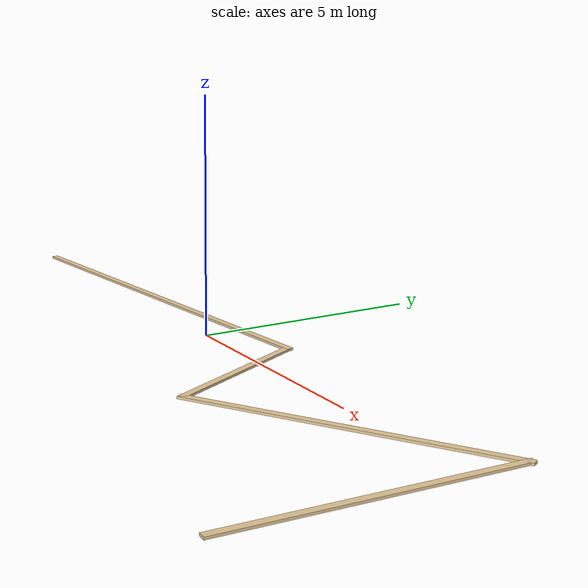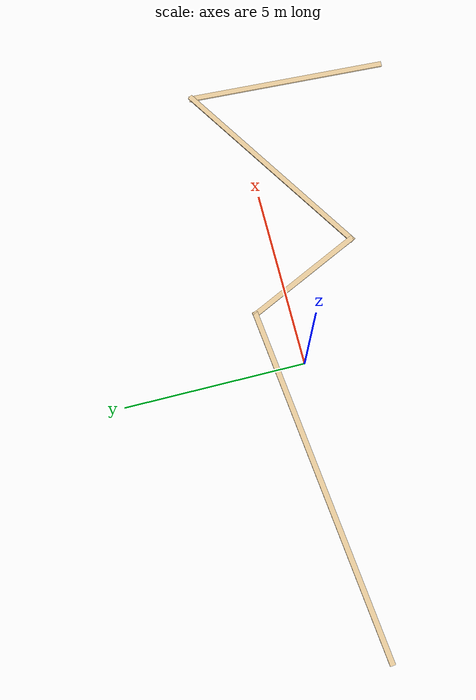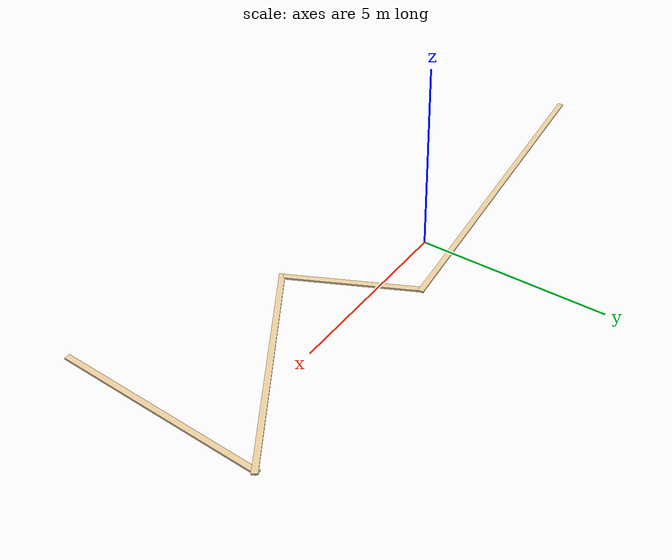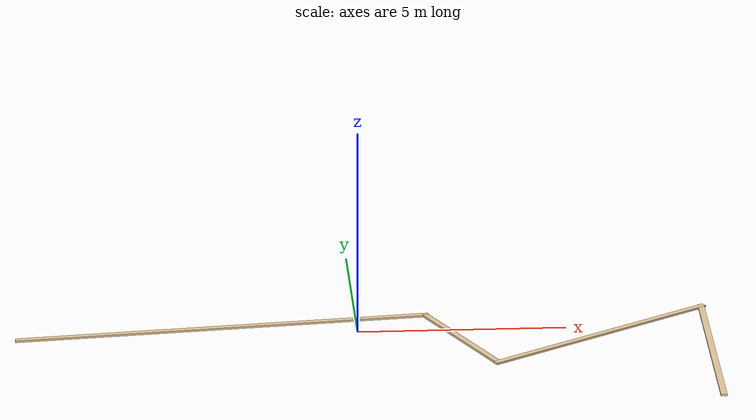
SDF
<?xml version='1.0'?>
<sdf version='1.7'>
  <model name='linefollower'>
    <pose>0.179958 -1.62372 0 0 -0 0</pose>
    <link name='Wall_14'>
      <collision name='Wall_14_Collision'>
        <geometry>
          <box>
            <size>9.98145 0.15 0.05</size>
          </box>
        </geometry>
        <pose>0 0 0.025 0 -0 0</pose>
      </collision>
      <visual name='Wall_14_Visual'>
        <pose>0 0 0.025 0 -0 0</pose>
        <geometry>
          <box>
            <size>9.98145 0.15 0.05</size>
          </box>
        </geometry>
        <material>
          <script>
            <uri>file://media/materials/scripts/gazebo.material</uri>
            <name>Gazebo/Grey</name>
          </script>
          <ambient>0.921569 0.807843 0.615686 1</ambient>
        </material>
        <meta>
          <layer>0</layer>
        </meta>
      </visual>
      <pose>-3.38525 2.02931 0 0 -0 0.110055</pose>
    </link>
    <link name='Wall_15'>
      <collision name='Wall_15_Collision'>
        <geometry>
          <box>
            <size>3.58851 0.15 0.05</size>
          </box>
        </geometry>
        <pose>0 0 0.025 0 -0 0</pose>
      </collision>
      <visual name='Wall_15_Visual'>
        <pose>0 0 0.025 0 -0 0</pose>
        <geometry>
          <box>
            <size>3.58851 0.15 0.05</size>
          </box>
        </geometry>
        <material>
          <script>
            <uri>file://media/materials/scripts/gazebo.material</uri>
            <name>Gazebo/Grey</name>
          </script>
          <ambient>0.921569 0.807843 0.615686 1</ambient>
        </material>
        <meta>
          <layer>0</layer>
        </meta>
      </visual>
      <pose>2.24026 1.00195 0 0 -0 -1.12614</pose>
    </link>
    <link name='Wall_16'>
      <collision name='Wall_16_Collision'>
        <geometry>
          <box>
            <size>6.3813 0.15 0.05</size>
          </box>
        </geometry>
        <pose>0 0 0.025 0 -0 0</pose>
      </collision>
      <visual name='Wall_16_Visual'>
        <pose>0 0 0.025 0 -0 0</pose>
        <geometry>
          <box>
            <size>6.3813 0.15 0.05</size>
          </box>
        </geometry>
        <material>
          <script>
            <uri>file://media/materials/scripts/gazebo.material</uri>
            <name>Gazebo/Grey</name>
          </script>
          <ambient>0.921569 0.807843 0.615686 1</ambient>
        </material>
        <meta>
          <layer>0</layer>
        </meta>
      </visual>
      <pose>5.61519 1.09659 0 0 -0 0.562628</pose>
    </link>
    <link name='Wall_17'>
      <collision name='Wall_17_Collision'>
        <geometry>
          <box>
            <size>5.69787 0.15 0.05</size>
          </box>
        </geometry>
        <pose>0 0 0.025 0 -0 0</pose>
      </collision>
      <visual name='Wall_17_Visual'>
        <pose>0 0 0.025 0 -0 0</pose>
        <geometry>
          <box>
            <size>5.69787 0.15 0.05</size>
          </box>
        </geometry>
        <material>
          <script>
            <uri>file://media/materials/scripts/gazebo.material</uri>
            <name>Gazebo/Grey</name>
          </script>
          <ambient>0.921569 0.807843 0.615686 1</ambient>
        </material>
        <meta>
          <layer>0</layer>
        </meta>
      </visual>
      <pose>8.10916 -0.012555 0 0 -0 -1.61631</pose>
    </link>
    <static>1</static>
  </model>
</sdf>
